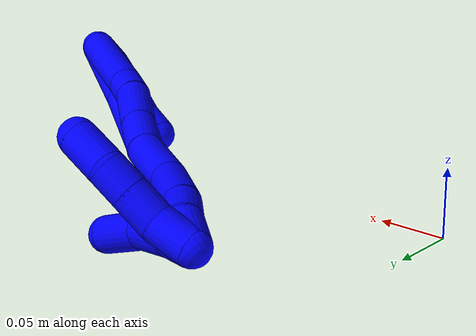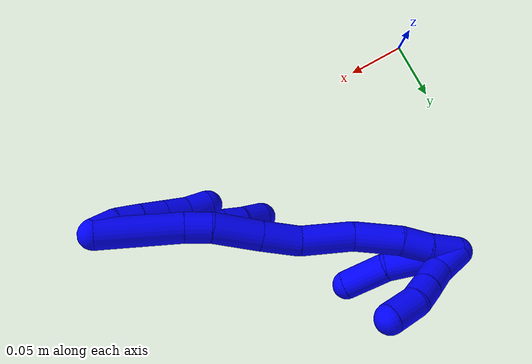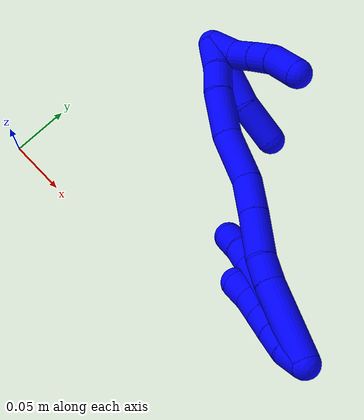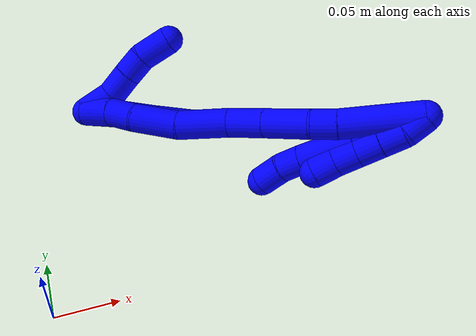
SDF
<sdf version="1.7">
 <world name="default">
  <model name="photoneo_s_sensor">
   <static>1</static>
   <pose>0 0 2 1.57079 1.57079 3.14159</pose>
   <link name="link">
    <inertial><mass>0.1</mass></inertial>
    <sensor name="sensor" type="depth">
     <update_rate>30</update_rate>
     <camera>
      <horizontal_fov>1.22</horizontal_fov>
      <image><width>1920</width><height>1200</height><format>B8G8R8</format></image>
      <clip><near>0.1</near><far>4</far></clip>
      <depth_camera><output>points</output></depth_camera>
     </camera>
     <plugin name="camera_plugin" filename="libgazebo_ros_depth_camera.so">
      <baseline>0.2</baseline>
      <alwaysOn>1</alwaysOn>
      <updateRate>0.0</updateRate>
      <cameraName>camera_ir</cameraName>
      <imageTopicName>/camera/color/image_raw</imageTopicName>
      <cameraInfoTopicName>/camera/color/camera_info</cameraInfoTopicName>
      <depthImageTopicName>/camera/depth/image_raw</depthImageTopicName>
      <depthImageCameraInfoTopicName>/camera/depth/camera_info</depthImageCameraInfoTopicName>
      <pointCloudTopicName>/camera/depth/points</pointCloudTopicName>
      <frameName>fr_optical</frameName>
      <pointCloudCutoff>0.1</pointCloudCutoff>
      <pointCloudCutoffMax>2.0</pointCloudCutoffMax>
      <distortionK1>0</distortionK1>
      <distortionK2>0</distortionK2>
      <distortionK3>0</distortionK3>
      <distortionT1>0</distortionT1>
      <distortionT2>0</distortionT2>
      <CxPrime>0</CxPrime>
      <Cx>0</Cx>
      <Cy>0</Cy>
      <focalLength>0</focalLength>
      <hackBaseline>0</hackBaseline>
     </plugin>
    </sensor>
   </link>
  </model>
  <model name="bin">
   <static>1</static>
   <link name="bottom">
    <collision name="collision-bottom">
     <pose>0 0 -0.01 0 -0 0</pose>
     <geometry><box><size>0.8 0.6 0.02</size></box></geometry>
     <surface>
      <friction><ode><mu>100</mu><mu2>100</mu2></ode></friction>
      <contact><collide_bitmask>65535</collide_bitmask></contact>
     </surface>
    </collision>
   </link>
   <link name="west_wall">
    <collision name="collision-west_wall">
     <pose>-0.41 0 0.1 0 -0 0</pose>
     <geometry><box><size>0.02 0.6 0.2</size></box></geometry>
     <surface>
      <friction><ode><mu>100</mu><mu2>100</mu2></ode></friction>
      <contact><collide_bitmask>65535</collide_bitmask></contact>
     </surface>
    </collision>
   </link>
   <link name="east_wall">
    <collision name="collision-east_wall">
     <pose>0.41 0 0.1 0 -0 0</pose>
     <geometry><box><size>0.02 0.6 0.2</size></box></geometry>
     <surface>
      <friction><ode><mu>100</mu><mu2>100</mu2></ode></friction>
      <contact><collide_bitmask>65535</collide_bitmask></contact>
     </surface>
    </collision>
   </link>
   <link name="south_wall">
    <collision name="collision-south_wall">
     <pose>0 -0.31 0.1 0 -0 0</pose>
     <geometry><box><size>0.8 0.02 0.2</size></box></geometry>
     <surface>
      <friction><ode><mu>100</mu><mu2>100</mu2></ode></friction>
      <contact><collide_bitmask>65535</collide_bitmask></contact>
     </surface>
    </collision>
   </link>
   <link name="north_wall">
    <collision name="collision-north_wall">
     <pose>0 0.31 0.1 0 -0 0</pose>
     <geometry><box><size>0.8 0.02 0.2</size></box></geometry>
     <surface>
      <friction><ode><mu>100</mu><mu2>100</mu2></ode></friction>
      <contact><collide_bitmask>65535</collide_bitmask></contact>
     </surface>
    </collision>
   </link>
  </model>
  <model name="1">
   <static>0</static>
   <link name="1">
    <collision name="collision-cylinder-e_1_2_8">
     <pose>0.000139 0.009773 0.027738 -0.338739 0.004714 -0.000806</pose>
     <geometry><cylinder><radius>0.0125</radius><length>0.058819</length></cylinder></geometry>
     <surface>
      <friction><ode><mu>1.16</mu><mu2>1.16</mu2><slip1>0</slip1><slip2>0</slip2></ode></friction>
      <contact><ode><kp>1e+06</kp><kd>1</kd><max_vel>0</max_vel><min_depth>0.001</min_depth></ode></contact>
     </surface>
    </collision>
    <visual name="visual-cylinder-e_1_2_8">
     <pose>0.000139 0.009773 0.027738 -0.338739 0.004714 -0.000806</pose>
     <geometry><cylinder><radius>0.0125</radius><length>0.058819</length></cylinder></geometry>
     <material><ambient>0 0 1 1</ambient></material>
    </visual>
    <collision name="collision-cylinder-e_2_8_9">
     <pose>-0.000883 0.028095 0.078295 -0.358496 -0.047589 0.008624</pose>
     <geometry><cylinder><radius>0.0125</radius><length>0.048792</length></cylinder></geometry>
     <surface>
      <friction><ode><mu>1.16</mu><mu2>1.16</mu2><slip1>0</slip1><slip2>0</slip2></ode></friction>
      <contact><ode><kp>1e+06</kp><kd>1</kd><max_vel>0</max_vel><min_depth>0.001</min_depth></ode></contact>
     </surface>
    </collision>
    <visual name="visual-cylinder-e_2_8_9">
     <pose>-0.000883 0.028095 0.078295 -0.358496 -0.047589 0.008624</pose>
     <geometry><cylinder><radius>0.0125</radius><length>0.048792</length></cylinder></geometry>
     <material><ambient>0 0 1 1</ambient></material>
    </visual>
    <collision name="collision-cylinder-e_3_9_10">
     <pose>-0.002339 0.039596 0.110769 -0.296622 -0.02918 0.00436</pose>
     <geometry><cylinder><radius>0.0125</radius><length>0.0202</length></cylinder></geometry>
     <surface>
      <friction><ode><mu>1.16</mu><mu2>1.16</mu2><slip1>0</slip1><slip2>0</slip2></ode></friction>
      <contact><ode><kp>1e+06</kp><kd>1</kd><max_vel>0</max_vel><min_depth>0.001</min_depth></ode></contact>
     </surface>
    </collision>
    <visual name="visual-cylinder-e_3_9_10">
     <pose>-0.002339 0.039596 0.110769 -0.296622 -0.02918 0.00436</pose>
     <geometry><cylinder><radius>0.0125</radius><length>0.0202</length></cylinder></geometry>
     <material><ambient>0 0 1 1</ambient></material>
    </visual>
    <collision name="collision-cylinder-e_4_10_6">
     <pose>-0.004356 0.044228 0.131254 -0.153979 -0.155894 0.01205</pose>
     <geometry><cylinder><radius>0.0125</radius><length>0.022189</length></cylinder></geometry>
     <surface>
      <friction><ode><mu>1.16</mu><mu2>1.16</mu2><slip1>0</slip1><slip2>0</slip2></ode></friction>
      <contact><ode><kp>1e+06</kp><kd>1</kd><max_vel>0</max_vel><min_depth>0.001</min_depth></ode></contact>
     </surface>
    </collision>
    <visual name="visual-cylinder-e_4_10_6">
     <pose>-0.004356 0.044228 0.131254 -0.153979 -0.155894 0.01205</pose>
     <geometry><cylinder><radius>0.0125</radius><length>0.022189</length></cylinder></geometry>
     <material><ambient>0 0 1 1</ambient></material>
    </visual>
    <collision name="collision-cylinder-e_1_2_11">
     <pose>-2.7e-05 -0.000279 0.009996 0.027876 -0.002651 -3.7e-05</pose>
     <geometry><cylinder><radius>0.0125</radius><length>0.02</length></cylinder></geometry>
     <surface>
      <friction><ode><mu>1.16</mu><mu2>1.16</mu2><slip1>0</slip1><slip2>0</slip2></ode></friction>
      <contact><ode><kp>1e+06</kp><kd>1</kd><max_vel>0</max_vel><min_depth>0.001</min_depth></ode></contact>
     </surface>
    </collision>
    <visual name="visual-cylinder-e_1_2_11">
     <pose>-2.7e-05 -0.000279 0.009996 0.027876 -0.002651 -3.7e-05</pose>
     <geometry><cylinder><radius>0.0125</radius><length>0.02</length></cylinder></geometry>
     <material><ambient>0 0 1 1</ambient></material>
    </visual>
    <collision name="collision-cylinder-e_2_11_12">
     <pose>0.000122 0.001899 0.029684 -0.248211 0.017472 -0.00218</pose>
     <geometry><cylinder><radius>0.0125</radius><length>0.02</length></cylinder></geometry>
     <surface>
      <friction><ode><mu>1.16</mu><mu2>1.16</mu2><slip1>0</slip1><slip2>0</slip2></ode></friction>
      <contact><ode><kp>1e+06</kp><kd>1</kd><max_vel>0</max_vel><min_depth>0.001</min_depth></ode></contact>
     </surface>
    </collision>
    <visual name="visual-cylinder-e_2_11_12">
     <pose>0.000122 0.001899 0.029684 -0.248211 0.017472 -0.00218</pose>
     <geometry><cylinder><radius>0.0125</radius><length>0.02</length></cylinder></geometry>
     <material><ambient>0 0 1 1</ambient></material>
    </visual>
    <collision name="collision-cylinder-e_3_12_13">
     <pose>0.00021 0.006936 0.049037 -0.261026 -0.00861 0.00113</pose>
     <geometry><cylinder><radius>0.0125</radius><length>0.02</length></cylinder></geometry>
     <surface>
      <friction><ode><mu>1.16</mu><mu2>1.16</mu2><slip1>0</slip1><slip2>0</slip2></ode></friction>
      <contact><ode><kp>1e+06</kp><kd>1</kd><max_vel>0</max_vel><min_depth>0.001</min_depth></ode></contact>
     </surface>
    </collision>
    <visual name="visual-cylinder-e_3_12_13">
     <pose>0.00021 0.006936 0.049037 -0.261026 -0.00861 0.00113</pose>
     <geometry><cylinder><radius>0.0125</radius><length>0.02</length></cylinder></geometry>
     <material><ambient>0 0 1 1</ambient></material>
    </visual>
    <collision name="collision-cylinder-e_4_13_14">
     <pose>3.7e-05 0.012096 0.068359 -0.260864 -0.008765 0.00115</pose>
     <geometry><cylinder><radius>0.0125</radius><length>0.02</length></cylinder></geometry>
     <surface>
      <friction><ode><mu>1.16</mu><mu2>1.16</mu2><slip1>0</slip1><slip2>0</slip2></ode></friction>
      <contact><ode><kp>1e+06</kp><kd>1</kd><max_vel>0</max_vel><min_depth>0.001</min_depth></ode></contact>
     </surface>
    </collision>
    <visual name="visual-cylinder-e_4_13_14">
     <pose>3.7e-05 0.012096 0.068359 -0.260864 -0.008765 0.00115</pose>
     <geometry><cylinder><radius>0.0125</radius><length>0.02</length></cylinder></geometry>
     <material><ambient>0 0 1 1</ambient></material>
    </visual>
    <collision name="collision-cylinder-e_5_14_5">
     <pose>0.000746 0.015981 0.087903 -0.131413 0.079835 -0.005256</pose>
     <geometry><cylinder><radius>0.0125</radius><length>0.02</length></cylinder></geometry>
     <surface>
      <friction><ode><mu>1.16</mu><mu2>1.16</mu2><slip1>0</slip1><slip2>0</slip2></ode></friction>
      <contact><ode><kp>1e+06</kp><kd>1</kd><max_vel>0</max_vel><min_depth>0.001</min_depth></ode></contact>
     </surface>
    </collision>
    <visual name="visual-cylinder-e_5_14_5">
     <pose>0.000746 0.015981 0.087903 -0.131413 0.079835 -0.005256</pose>
     <geometry><cylinder><radius>0.0125</radius><length>0.02</length></cylinder></geometry>
     <material><ambient>0 0 1 1</ambient></material>
    </visual>
    <collision name="collision-cylinder-e_1_2_15">
     <pose>0.008605 0.015533 0.028914 -0.49297 0.256404 -0.064845</pose>
     <geometry><cylinder><radius>0.0125</radius><length>0.067863</length></cylinder></geometry>
     <surface>
      <friction><ode><mu>1.16</mu><mu2>1.16</mu2><slip1>0</slip1><slip2>0</slip2></ode></friction>
      <contact><ode><kp>1e+06</kp><kd>1</kd><max_vel>0</max_vel><min_depth>0.001</min_depth></ode></contact>
     </surface>
    </collision>
    <visual name="visual-cylinder-e_1_2_15">
     <pose>0.008605 0.015533 0.028914 -0.49297 0.256404 -0.064845</pose>
     <geometry><cylinder><radius>0.0125</radius><length>0.067863</length></cylinder></geometry>
     <material><ambient>0 0 1 1</ambient></material>
    </visual>
    <collision name="collision-cylinder-e_2_15_16">
     <pose>0.020164 0.036889 0.066597 -0.586204 0.273577 -0.083035</pose>
     <geometry><cylinder><radius>0.0125</radius><length>0.021864</length></cylinder></geometry>
     <surface>
      <friction><ode><mu>1.16</mu><mu2>1.16</mu2><slip1>0</slip1><slip2>0</slip2></ode></friction>
      <contact><ode><kp>1e+06</kp><kd>1</kd><max_vel>0</max_vel><min_depth>0.001</min_depth></ode></contact>
     </surface>
    </collision>
    <visual name="visual-cylinder-e_2_15_16">
     <pose>0.020164 0.036889 0.066597 -0.586204 0.273577 -0.083035</pose>
     <geometry><cylinder><radius>0.0125</radius><length>0.021864</length></cylinder></geometry>
     <material><ambient>0 0 1 1</ambient></material>
    </visual>
    <collision name="collision-cylinder-e_3_16_17">
     <pose>0.025181 0.055378 0.090925 -0.683273 0.102499 -0.036474</pose>
     <geometry><cylinder><radius>0.0125</radius><length>0.040339</length></cylinder></geometry>
     <surface>
      <friction><ode><mu>1.16</mu><mu2>1.16</mu2><slip1>0</slip1><slip2>0</slip2></ode></friction>
      <contact><ode><kp>1e+06</kp><kd>1</kd><max_vel>0</max_vel><min_depth>0.001</min_depth></ode></contact>
     </surface>
    </collision>
    <visual name="visual-cylinder-e_3_16_17">
     <pose>0.025181 0.055378 0.090925 -0.683273 0.102499 -0.036474</pose>
     <geometry><cylinder><radius>0.0125</radius><length>0.040339</length></cylinder></geometry>
     <material><ambient>0 0 1 1</ambient></material>
    </visual>
    <collision name="collision-cylinder-e_4_17_18">
     <pose>0.02948 0.078134 0.119305 -0.666698 0.136141 -0.047206</pose>
     <geometry><cylinder><radius>0.0125</radius><length>0.032933</length></cylinder></geometry>
     <surface>
      <friction><ode><mu>1.16</mu><mu2>1.16</mu2><slip1>0</slip1><slip2>0</slip2></ode></friction>
      <contact><ode><kp>1e+06</kp><kd>1</kd><max_vel>0</max_vel><min_depth>0.001</min_depth></ode></contact>
     </surface>
    </collision>
    <visual name="visual-cylinder-e_4_17_18">
     <pose>0.02948 0.078134 0.119305 -0.666698 0.136141 -0.047206</pose>
     <geometry><cylinder><radius>0.0125</radius><length>0.032933</length></cylinder></geometry>
     <material><ambient>0 0 1 1</ambient></material>
    </visual>
    <collision name="collision-cylinder-e_5_18_19">
     <pose>0.038838 0.098754 0.150781 -0.51393 0.321009 -0.085034</pose>
     <geometry><cylinder><radius>0.0125</radius><length>0.045151</length></cylinder></geometry>
     <surface>
      <friction><ode><mu>1.16</mu><mu2>1.16</mu2><slip1>0</slip1><slip2>0</slip2></ode></friction>
      <contact><ode><kp>1e+06</kp><kd>1</kd><max_vel>0</max_vel><min_depth>0.001</min_depth></ode></contact>
     </surface>
    </collision>
    <visual name="visual-cylinder-e_5_18_19">
     <pose>0.038838 0.098754 0.150781 -0.51393 0.321009 -0.085034</pose>
     <geometry><cylinder><radius>0.0125</radius><length>0.045151</length></cylinder></geometry>
     <material><ambient>0 0 1 1</ambient></material>
    </visual>
    <collision name="collision-cylinder-e_6_19_20">
     <pose>0.052878 0.122255 0.183643 -0.739882 0.345177 -0.134998</pose>
     <geometry><cylinder><radius>0.0125</radius><length>0.040885</length></cylinder></geometry>
     <surface>
      <friction><ode><mu>1.16</mu><mu2>1.16</mu2><slip1>0</slip1><slip2>0</slip2></ode></friction>
      <contact><ode><kp>1e+06</kp><kd>1</kd><max_vel>0</max_vel><min_depth>0.001</min_depth></ode></contact>
     </surface>
    </collision>
    <visual name="visual-cylinder-e_6_19_20">
     <pose>0.052878 0.122255 0.183643 -0.739882 0.345177 -0.134998</pose>
     <geometry><cylinder><radius>0.0125</radius><length>0.040885</length></cylinder></geometry>
     <material><ambient>0 0 1 1</ambient></material>
    </visual>
    <collision name="collision-cylinder-e_7_20_21">
     <pose>0.062286 0.144129 0.205665 -0.850531 0.207235 -0.094125</pose>
     <geometry><cylinder><radius>0.0125</radius><length>0.024213</length></cylinder></geometry>
     <surface>
      <friction><ode><mu>1.16</mu><mu2>1.16</mu2><slip1>0</slip1><slip2>0</slip2></ode></friction>
      <contact><ode><kp>1e+06</kp><kd>1</kd><max_vel>0</max_vel><min_depth>0.001</min_depth></ode></contact>
     </surface>
    </collision>
    <visual name="visual-cylinder-e_7_20_21">
     <pose>0.062286 0.144129 0.205665 -0.850531 0.207235 -0.094125</pose>
     <geometry><cylinder><radius>0.0125</radius><length>0.024213</length></cylinder></geometry>
     <material><ambient>0 0 1 1</ambient></material>
    </visual>
    <collision name="collision-cylinder-e_8_21_1">
     <pose>0.066904 0.161195 0.223861 -0.666198 0.159707 -0.055361</pose>
     <geometry><cylinder><radius>0.0125</radius><length>0.026751</length></cylinder></geometry>
     <surface>
      <friction><ode><mu>1.16</mu><mu2>1.16</mu2><slip1>0</slip1><slip2>0</slip2></ode></friction>
      <contact><ode><kp>1e+06</kp><kd>1</kd><max_vel>0</max_vel><min_depth>0.001</min_depth></ode></contact>
     </surface>
    </collision>
    <visual name="visual-cylinder-e_8_21_1">
     <pose>0.066904 0.161195 0.223861 -0.666198 0.159707 -0.055361</pose>
     <geometry><cylinder><radius>0.0125</radius><length>0.026751</length></cylinder></geometry>
     <material><ambient>0 0 1 1</ambient></material>
    </visual>
    <collision name="collision-cylinder-e_1_1_22">
     <pose>0.062285 0.164642 0.225688 2.63796 -0.604428 -1.76172</pose>
     <geometry><cylinder><radius>0.0125</radius><length>0.023741</length></cylinder></geometry>
     <surface>
      <friction><ode><mu>1.16</mu><mu2>1.16</mu2><slip1>0</slip1><slip2>0</slip2></ode></friction>
      <contact><ode><kp>1e+06</kp><kd>1</kd><max_vel>0</max_vel><min_depth>0.001</min_depth></ode></contact>
     </surface>
    </collision>
    <visual name="visual-cylinder-e_1_1_22">
     <pose>0.062285 0.164642 0.225688 2.63796 -0.604428 -1.76172</pose>
     <geometry><cylinder><radius>0.0125</radius><length>0.023741</length></cylinder></geometry>
     <material><ambient>0 0 1 1</ambient></material>
    </visual>
    <collision name="collision-cylinder-e_2_22_23">
     <pose>0.043378 0.15243 0.204972 2.58908 -0.705186 -1.82866</pose>
     <geometry><cylinder><radius>0.0125</radius><length>0.037524</length></cylinder></geometry>
     <surface>
      <friction><ode><mu>1.16</mu><mu2>1.16</mu2><slip1>0</slip1><slip2>0</slip2></ode></friction>
      <contact><ode><kp>1e+06</kp><kd>1</kd><max_vel>0</max_vel><min_depth>0.001</min_depth></ode></contact>
     </surface>
    </collision>
    <visual name="visual-cylinder-e_2_22_23">
     <pose>0.043378 0.15243 0.204972 2.58908 -0.705186 -1.82866</pose>
     <geometry><cylinder><radius>0.0125</radius><length>0.037524</length></cylinder></geometry>
     <material><ambient>0 0 1 1</ambient></material>
    </visual>
    <collision name="collision-cylinder-e_3_23_4">
     <pose>0.015776 0.141005 0.181799 2.79904 -0.922758 -2.47197</pose>
     <geometry><cylinder><radius>0.0125</radius><length>0.038735</length></cylinder></geometry>
     <surface>
      <friction><ode><mu>1.16</mu><mu2>1.16</mu2><slip1>0</slip1><slip2>0</slip2></ode></friction>
      <contact><ode><kp>1e+06</kp><kd>1</kd><max_vel>0</max_vel><min_depth>0.001</min_depth></ode></contact>
     </surface>
    </collision>
    <visual name="visual-cylinder-e_3_23_4">
     <pose>0.015776 0.141005 0.181799 2.79904 -0.922758 -2.47197</pose>
     <geometry><cylinder><radius>0.0125</radius><length>0.038735</length></cylinder></geometry>
     <material><ambient>0 0 1 1</ambient></material>
    </visual>
    <collision name="collision-cylinder-e_1_1_24">
     <pose>0.065809 0.170625 0.22133 -3.04362 -0.243429 2.3792</pose>
     <geometry><cylinder><radius>0.0125</radius><length>0.026737</length></cylinder></geometry>
     <surface>
      <friction><ode><mu>1.16</mu><mu2>1.16</mu2><slip1>0</slip1><slip2>0</slip2></ode></friction>
      <contact><ode><kp>1e+06</kp><kd>1</kd><max_vel>0</max_vel><min_depth>0.001</min_depth></ode></contact>
     </surface>
    </collision>
    <visual name="visual-cylinder-e_1_1_24">
     <pose>0.065809 0.170625 0.22133 -3.04362 -0.243429 2.3792</pose>
     <geometry><cylinder><radius>0.0125</radius><length>0.026737</length></cylinder></geometry>
     <material><ambient>0 0 1 1</ambient></material>
    </visual>
    <collision name="collision-cylinder-e_2_24_25">
     <pose>0.063525 0.174425 0.19671 -2.92866 0.078131 -0.701238</pose>
     <geometry><cylinder><radius>0.0125</radius><length>0.024031</length></cylinder></geometry>
     <surface>
      <friction><ode><mu>1.16</mu><mu2>1.16</mu2><slip1>0</slip1><slip2>0</slip2></ode></friction>
      <contact><ode><kp>1e+06</kp><kd>1</kd><max_vel>0</max_vel><min_depth>0.001</min_depth></ode></contact>
     </surface>
    </collision>
    <visual name="visual-cylinder-e_2_24_25">
     <pose>0.063525 0.174425 0.19671 -2.92866 0.078131 -0.701238</pose>
     <geometry><cylinder><radius>0.0125</radius><length>0.024031</length></cylinder></geometry>
     <material><ambient>0 0 1 1</ambient></material>
    </visual>
    <collision name="collision-cylinder-e_3_25_26">
     <pose>0.065012 0.178907 0.174926 -2.9504 0.053482 -0.544055</pose>
     <geometry><cylinder><radius>0.0125</radius><length>0.020555</length></cylinder></geometry>
     <surface>
      <friction><ode><mu>1.16</mu><mu2>1.16</mu2><slip1>0</slip1><slip2>0</slip2></ode></friction>
      <contact><ode><kp>1e+06</kp><kd>1</kd><max_vel>0</max_vel><min_depth>0.001</min_depth></ode></contact>
     </surface>
    </collision>
    <visual name="visual-cylinder-e_3_25_26">
     <pose>0.065012 0.178907 0.174926 -2.9504 0.053482 -0.544055</pose>
     <geometry><cylinder><radius>0.0125</radius><length>0.020555</length></cylinder></geometry>
     <material><ambient>0 0 1 1</ambient></material>
    </visual>
    <collision name="collision-cylinder-e_4_26_3">
     <pose>0.063809 0.180198 0.150634 3.09529 -0.1225 -2.4195</pose>
     <geometry><cylinder><radius>0.0125</radius><length>0.028677</length></cylinder></geometry>
     <surface>
      <friction><ode><mu>1.16</mu><mu2>1.16</mu2><slip1>0</slip1><slip2>0</slip2></ode></friction>
      <contact><ode><kp>1e+06</kp><kd>1</kd><max_vel>0</max_vel><min_depth>0.001</min_depth></ode></contact>
     </surface>
    </collision>
    <visual name="visual-cylinder-e_4_26_3">
     <pose>0.063809 0.180198 0.150634 3.09529 -0.1225 -2.4195</pose>
     <geometry><cylinder><radius>0.0125</radius><length>0.028677</length></cylinder></geometry>
     <material><ambient>0 0 1 1</ambient></material>
    </visual>
    <collision name="collision-sphere-3">
     <pose>0.062057 0.17954 0.136418 0 -0 0</pose>
     <geometry><sphere><radius>0.0125</radius></sphere></geometry>
     <surface>
      <friction><ode><mu>1.16</mu><mu2>1.16</mu2><slip1>0</slip1><slip2>0</slip2></ode></friction>
      <contact><ode><kp>1e+06</kp><kd>1</kd><max_vel>0</max_vel><min_depth>0.001</min_depth></ode></contact>
     </surface>
    </collision>
    <visual name="visual-sphere-3">
     <pose>0.062057 0.17954 0.136418 0 -0 0</pose>
     <geometry><sphere><radius>0.0125</radius></sphere></geometry>
     <material><ambient>0 0 1 1</ambient></material>
    </visual>
    <collision name="collision-sphere-26">
     <pose>0.065561 0.180857 0.16485 0 -0 0</pose>
     <geometry><sphere><radius>0.0125</radius></sphere></geometry>
     <surface>
      <friction><ode><mu>1.16</mu><mu2>1.16</mu2><slip1>0</slip1><slip2>0</slip2></ode></friction>
      <contact><ode><kp>1e+06</kp><kd>1</kd><max_vel>0</max_vel><min_depth>0.001</min_depth></ode></contact>
     </surface>
    </collision>
    <visual name="visual-sphere-26">
     <pose>0.065561 0.180857 0.16485 0 -0 0</pose>
     <geometry><sphere><radius>0.0125</radius></sphere></geometry>
     <material><ambient>0 0 1 1</ambient></material>
    </visual>
    <collision name="collision-sphere-25">
     <pose>0.064462 0.176957 0.185002 0 -0 0</pose>
     <geometry><sphere><radius>0.0125</radius></sphere></geometry>
     <surface>
      <friction><ode><mu>1.16</mu><mu2>1.16</mu2><slip1>0</slip1><slip2>0</slip2></ode></friction>
      <contact><ode><kp>1e+06</kp><kd>1</kd><max_vel>0</max_vel><min_depth>0.001</min_depth></ode></contact>
     </surface>
    </collision>
    <visual name="visual-sphere-25">
     <pose>0.064462 0.176957 0.185002 0 -0 0</pose>
     <geometry><sphere><radius>0.0125</radius></sphere></geometry>
     <material><ambient>0 0 1 1</ambient></material>
    </visual>
    <collision name="collision-sphere-24">
     <pose>0.062587 0.171894 0.208418 0 -0 0</pose>
     <geometry><sphere><radius>0.0125</radius></sphere></geometry>
     <surface>
      <friction><ode><mu>1.16</mu><mu2>1.16</mu2><slip1>0</slip1><slip2>0</slip2></ode></friction>
      <contact><ode><kp>1e+06</kp><kd>1</kd><max_vel>0</max_vel><min_depth>0.001</min_depth></ode></contact>
     </surface>
    </collision>
    <visual name="visual-sphere-24">
     <pose>0.062587 0.171894 0.208418 0 -0 0</pose>
     <geometry><sphere><radius>0.0125</radius></sphere></geometry>
     <material><ambient>0 0 1 1</ambient></material>
    </visual>
    <collision name="collision-sphere-4">
     <pose>0.000335 0.137078 0.170788 0 -0 0</pose>
     <geometry><sphere><radius>0.0125</radius></sphere></geometry>
     <surface>
      <friction><ode><mu>1.16</mu><mu2>1.16</mu2><slip1>0</slip1><slip2>0</slip2></ode></friction>
      <contact><ode><kp>1e+06</kp><kd>1</kd><max_vel>0</max_vel><min_depth>0.001</min_depth></ode></contact>
     </surface>
    </collision>
    <visual name="visual-sphere-4">
     <pose>0.000335 0.137078 0.170788 0 -0 0</pose>
     <geometry><sphere><radius>0.0125</radius></sphere></geometry>
     <material><ambient>0 0 1 1</ambient></material>
    </visual>
    <collision name="collision-sphere-23">
     <pose>0.031217 0.144931 0.192811 0 -0 0</pose>
     <geometry><sphere><radius>0.0125</radius></sphere></geometry>
     <surface>
      <friction><ode><mu>1.16</mu><mu2>1.16</mu2><slip1>0</slip1><slip2>0</slip2></ode></friction>
      <contact><ode><kp>1e+06</kp><kd>1</kd><max_vel>0</max_vel><min_depth>0.001</min_depth></ode></contact>
     </surface>
    </collision>
    <visual name="visual-sphere-23">
     <pose>0.031217 0.144931 0.192811 0 -0 0</pose>
     <geometry><sphere><radius>0.0125</radius></sphere></geometry>
     <material><ambient>0 0 1 1</ambient></material>
    </visual>
    <collision name="collision-sphere-22">
     <pose>0.055539 0.159928 0.217133 0 -0 0</pose>
     <geometry><sphere><radius>0.0125</radius></sphere></geometry>
     <surface>
      <friction><ode><mu>1.16</mu><mu2>1.16</mu2><slip1>0</slip1><slip2>0</slip2></ode></friction>
      <contact><ode><kp>1e+06</kp><kd>1</kd><max_vel>0</max_vel><min_depth>0.001</min_depth></ode></contact>
     </surface>
    </collision>
    <visual name="visual-sphere-22">
     <pose>0.055539 0.159928 0.217133 0 -0 0</pose>
     <geometry><sphere><radius>0.0125</radius></sphere></geometry>
     <material><ambient>0 0 1 1</ambient></material>
    </visual>
    <collision name="collision-sphere-1">
     <pose>0.069031 0.169356 0.234243 0 -0 0</pose>
     <geometry><sphere><radius>0.0125</radius></sphere></geometry>
     <surface>
      <friction><ode><mu>1.16</mu><mu2>1.16</mu2><slip1>0</slip1><slip2>0</slip2></ode></friction>
      <contact><ode><kp>1e+06</kp><kd>1</kd><max_vel>0</max_vel><min_depth>0.001</min_depth></ode></contact>
     </surface>
    </collision>
    <visual name="visual-sphere-1">
     <pose>0.069031 0.169356 0.234243 0 -0 0</pose>
     <geometry><sphere><radius>0.0125</radius></sphere></geometry>
     <material><ambient>0 0 1 1</ambient></material>
    </visual>
    <collision name="collision-sphere-21">
     <pose>0.064777 0.153034 0.213479 0 -0 0</pose>
     <geometry><sphere><radius>0.0125</radius></sphere></geometry>
     <surface>
      <friction><ode><mu>1.16</mu><mu2>1.16</mu2><slip1>0</slip1><slip2>0</slip2></ode></friction>
      <contact><ode><kp>1e+06</kp><kd>1</kd><max_vel>0</max_vel><min_depth>0.001</min_depth></ode></contact>
     </surface>
    </collision>
    <visual name="visual-sphere-21">
     <pose>0.064777 0.153034 0.213479 0 -0 0</pose>
     <geometry><sphere><radius>0.0125</radius></sphere></geometry>
     <material><ambient>0 0 1 1</ambient></material>
    </visual>
    <collision name="collision-sphere-11">
     <pose>-5.3e-05 -0.000557 0.019992 0 -0 0</pose>
     <geometry><sphere><radius>0.0125</radius></sphere></geometry>
     <surface>
      <friction><ode><mu>1.16</mu><mu2>1.16</mu2><slip1>0</slip1><slip2>0</slip2></ode></friction>
      <contact><ode><kp>1e+06</kp><kd>1</kd><max_vel>0</max_vel><min_depth>0.001</min_depth></ode></contact>
     </surface>
    </collision>
    <visual name="visual-sphere-11">
     <pose>-5.3e-05 -0.000557 0.019992 0 -0 0</pose>
     <geometry><sphere><radius>0.0125</radius></sphere></geometry>
     <material><ambient>0 0 1 1</ambient></material>
    </visual>
    <collision name="collision-sphere-6">
     <pose>-0.006078 0.045909 0.142085 0 -0 0</pose>
     <geometry><sphere><radius>0.0125</radius></sphere></geometry>
     <surface>
      <friction><ode><mu>1.16</mu><mu2>1.16</mu2><slip1>0</slip1><slip2>0</slip2></ode></friction>
      <contact><ode><kp>1e+06</kp><kd>1</kd><max_vel>0</max_vel><min_depth>0.001</min_depth></ode></contact>
     </surface>
    </collision>
    <visual name="visual-sphere-6">
     <pose>-0.006078 0.045909 0.142085 0 -0 0</pose>
     <geometry><sphere><radius>0.0125</radius></sphere></geometry>
     <material><ambient>0 0 1 1</ambient></material>
    </visual>
    <collision name="collision-sphere-10">
     <pose>-0.002633 0.042547 0.120424 0 -0 0</pose>
     <geometry><sphere><radius>0.0125</radius></sphere></geometry>
     <surface>
      <friction><ode><mu>1.16</mu><mu2>1.16</mu2><slip1>0</slip1><slip2>0</slip2></ode></friction>
      <contact><ode><kp>1e+06</kp><kd>1</kd><max_vel>0</max_vel><min_depth>0.001</min_depth></ode></contact>
     </surface>
    </collision>
    <visual name="visual-sphere-10">
     <pose>-0.002633 0.042547 0.120424 0 -0 0</pose>
     <geometry><sphere><radius>0.0125</radius></sphere></geometry>
     <material><ambient>0 0 1 1</ambient></material>
    </visual>
    <collision name="collision-sphere-9">
     <pose>-0.002044 0.036645 0.101114 0 -0 0</pose>
     <geometry><sphere><radius>0.0125</radius></sphere></geometry>
     <surface>
      <friction><ode><mu>1.16</mu><mu2>1.16</mu2><slip1>0</slip1><slip2>0</slip2></ode></friction>
      <contact><ode><kp>1e+06</kp><kd>1</kd><max_vel>0</max_vel><min_depth>0.001</min_depth></ode></contact>
     </surface>
    </collision>
    <visual name="visual-sphere-9">
     <pose>-0.002044 0.036645 0.101114 0 -0 0</pose>
     <geometry><sphere><radius>0.0125</radius></sphere></geometry>
     <material><ambient>0 0 1 1</ambient></material>
    </visual>
    <collision name="collision-sphere-2">
     <geometry><sphere><radius>0.0125</radius></sphere></geometry>
     <surface>
      <friction><ode><mu>1.16</mu><mu2>1.16</mu2><slip1>0</slip1><slip2>0</slip2></ode></friction>
      <contact><ode><kp>1e+06</kp><kd>1</kd><max_vel>0</max_vel><min_depth>0.001</min_depth></ode></contact>
     </surface>
    </collision>
    <visual name="visual-sphere-2">
     <geometry><sphere><radius>0.0125</radius></sphere></geometry>
     <material><ambient>0 0 1 1</ambient></material>
    </visual>
    <collision name="collision-sphere-19">
     <pose>0.045961 0.109285 0.169436 0 -0 0</pose>
     <geometry><sphere><radius>0.0125</radius></sphere></geometry>
     <surface>
      <friction><ode><mu>1.16</mu><mu2>1.16</mu2><slip1>0</slip1><slip2>0</slip2></ode></friction>
      <contact><ode><kp>1e+06</kp><kd>1</kd><max_vel>0</max_vel><min_depth>0.001</min_depth></ode></contact>
     </surface>
    </collision>
    <visual name="visual-sphere-19">
     <pose>0.045961 0.109285 0.169436 0 -0 0</pose>
     <geometry><sphere><radius>0.0125</radius></sphere></geometry>
     <material><ambient>0 0 1 1</ambient></material>
    </visual>
    <collision name="collision-sphere-8">
     <pose>0.000277 0.019545 0.055476 0 -0 0</pose>
     <geometry><sphere><radius>0.0125</radius></sphere></geometry>
     <surface>
      <friction><ode><mu>1.16</mu><mu2>1.16</mu2><slip1>0</slip1><slip2>0</slip2></ode></friction>
      <contact><ode><kp>1e+06</kp><kd>1</kd><max_vel>0</max_vel><min_depth>0.001</min_depth></ode></contact>
     </surface>
    </collision>
    <visual name="visual-sphere-8">
     <pose>0.000277 0.019545 0.055476 0 -0 0</pose>
     <geometry><sphere><radius>0.0125</radius></sphere></geometry>
     <material><ambient>0 0 1 1</ambient></material>
    </visual>
    <collision name="collision-sphere-12">
     <pose>0.000296 0.004355 0.039376 0 -0 0</pose>
     <geometry><sphere><radius>0.0125</radius></sphere></geometry>
     <surface>
      <friction><ode><mu>1.16</mu><mu2>1.16</mu2><slip1>0</slip1><slip2>0</slip2></ode></friction>
      <contact><ode><kp>1e+06</kp><kd>1</kd><max_vel>0</max_vel><min_depth>0.001</min_depth></ode></contact>
     </surface>
    </collision>
    <visual name="visual-sphere-12">
     <pose>0.000296 0.004355 0.039376 0 -0 0</pose>
     <geometry><sphere><radius>0.0125</radius></sphere></geometry>
     <material><ambient>0 0 1 1</ambient></material>
    </visual>
    <collision name="collision-sphere-13">
     <pose>0.000124 0.009516 0.058698 0 -0 0</pose>
     <geometry><sphere><radius>0.0125</radius></sphere></geometry>
     <surface>
      <friction><ode><mu>1.16</mu><mu2>1.16</mu2><slip1>0</slip1><slip2>0</slip2></ode></friction>
      <contact><ode><kp>1e+06</kp><kd>1</kd><max_vel>0</max_vel><min_depth>0.001</min_depth></ode></contact>
     </surface>
    </collision>
    <visual name="visual-sphere-13">
     <pose>0.000124 0.009516 0.058698 0 -0 0</pose>
     <geometry><sphere><radius>0.0125</radius></sphere></geometry>
     <material><ambient>0 0 1 1</ambient></material>
    </visual>
    <collision name="collision-sphere-14">
     <pose>-5.1e-05 0.014675 0.078021 0 -0 0</pose>
     <geometry><sphere><radius>0.0125</radius></sphere></geometry>
     <surface>
      <friction><ode><mu>1.16</mu><mu2>1.16</mu2><slip1>0</slip1><slip2>0</slip2></ode></friction>
      <contact><ode><kp>1e+06</kp><kd>1</kd><max_vel>0</max_vel><min_depth>0.001</min_depth></ode></contact>
     </surface>
    </collision>
    <visual name="visual-sphere-14">
     <pose>-5.1e-05 0.014675 0.078021 0 -0 0</pose>
     <geometry><sphere><radius>0.0125</radius></sphere></geometry>
     <material><ambient>0 0 1 1</ambient></material>
    </visual>
    <collision name="collision-sphere-5">
     <pose>0.001544 0.017287 0.097785 0 -0 0</pose>
     <geometry><sphere><radius>0.0125</radius></sphere></geometry>
     <surface>
      <friction><ode><mu>1.16</mu><mu2>1.16</mu2><slip1>0</slip1><slip2>0</slip2></ode></friction>
      <contact><ode><kp>1e+06</kp><kd>1</kd><max_vel>0</max_vel><min_depth>0.001</min_depth></ode></contact>
     </surface>
    </collision>
    <visual name="visual-sphere-5">
     <pose>0.001544 0.017287 0.097785 0 -0 0</pose>
     <geometry><sphere><radius>0.0125</radius></sphere></geometry>
     <material><ambient>0 0 1 1</ambient></material>
    </visual>
    <collision name="collision-sphere-15">
     <pose>0.01721 0.031066 0.057828 0 -0 0</pose>
     <geometry><sphere><radius>0.0125</radius></sphere></geometry>
     <surface>
      <friction><ode><mu>1.16</mu><mu2>1.16</mu2><slip1>0</slip1><slip2>0</slip2></ode></friction>
      <contact><ode><kp>1e+06</kp><kd>1</kd><max_vel>0</max_vel><min_depth>0.001</min_depth></ode></contact>
     </surface>
    </collision>
    <visual name="visual-sphere-15">
     <pose>0.01721 0.031066 0.057828 0 -0 0</pose>
     <geometry><sphere><radius>0.0125</radius></sphere></geometry>
     <material><ambient>0 0 1 1</ambient></material>
    </visual>
    <collision name="collision-sphere-16">
     <pose>0.023118 0.042711 0.075365 0 -0 0</pose>
     <geometry><sphere><radius>0.0125</radius></sphere></geometry>
     <surface>
      <friction><ode><mu>1.16</mu><mu2>1.16</mu2><slip1>0</slip1><slip2>0</slip2></ode></friction>
      <contact><ode><kp>1e+06</kp><kd>1</kd><max_vel>0</max_vel><min_depth>0.001</min_depth></ode></contact>
     </surface>
    </collision>
    <visual name="visual-sphere-16">
     <pose>0.023118 0.042711 0.075365 0 -0 0</pose>
     <geometry><sphere><radius>0.0125</radius></sphere></geometry>
     <material><ambient>0 0 1 1</ambient></material>
    </visual>
    <collision name="collision-sphere-17">
     <pose>0.027245 0.068045 0.106484 0 -0 0</pose>
     <geometry><sphere><radius>0.0125</radius></sphere></geometry>
     <surface>
      <friction><ode><mu>1.16</mu><mu2>1.16</mu2><slip1>0</slip1><slip2>0</slip2></ode></friction>
      <contact><ode><kp>1e+06</kp><kd>1</kd><max_vel>0</max_vel><min_depth>0.001</min_depth></ode></contact>
     </surface>
    </collision>
    <visual name="visual-sphere-17">
     <pose>0.027245 0.068045 0.106484 0 -0 0</pose>
     <geometry><sphere><radius>0.0125</radius></sphere></geometry>
     <material><ambient>0 0 1 1</ambient></material>
    </visual>
    <collision name="collision-sphere-18">
     <pose>0.031715 0.088222 0.132125 0 -0 0</pose>
     <geometry><sphere><radius>0.0125</radius></sphere></geometry>
     <surface>
      <friction><ode><mu>1.16</mu><mu2>1.16</mu2><slip1>0</slip1><slip2>0</slip2></ode></friction>
      <contact><ode><kp>1e+06</kp><kd>1</kd><max_vel>0</max_vel><min_depth>0.001</min_depth></ode></contact>
     </surface>
    </collision>
    <visual name="visual-sphere-18">
     <pose>0.031715 0.088222 0.132125 0 -0 0</pose>
     <geometry><sphere><radius>0.0125</radius></sphere></geometry>
     <material><ambient>0 0 1 1</ambient></material>
    </visual>
    <collision name="collision-sphere-20">
     <pose>0.059795 0.135224 0.19785 0 -0 0</pose>
     <geometry><sphere><radius>0.0125</radius></sphere></geometry>
     <surface>
      <friction><ode><mu>1.16</mu><mu2>1.16</mu2><slip1>0</slip1><slip2>0</slip2></ode></friction>
      <contact><ode><kp>1e+06</kp><kd>1</kd><max_vel>0</max_vel><min_depth>0.001</min_depth></ode></contact>
     </surface>
    </collision>
    <visual name="visual-sphere-20">
     <pose>0.059795 0.135224 0.19785 0 -0 0</pose>
     <geometry><sphere><radius>0.0125</radius></sphere></geometry>
     <material><ambient>0 0 1 1</ambient></material>
    </visual>
    <inertial>
     <pose>0.026984 0.081434 0.120603 0 -0 0</pose>
     <mass>0.75</mass>
     <inertia>
      <ixx>8.1e-05</ixx>
      <ixy>0</ixy>
      <ixz>0</ixz>
      <iyy>0.000105</iyy>
      <iyz>0</iyz>
      <izz>-2.2e-05</izz>
     </inertia>
    </inertial>
   </link>
   <pose>0.305384 0.032568 0.092451 2.91006 -0.932992 -2.84096</pose>
  </model>
 </world>
</sdf>
